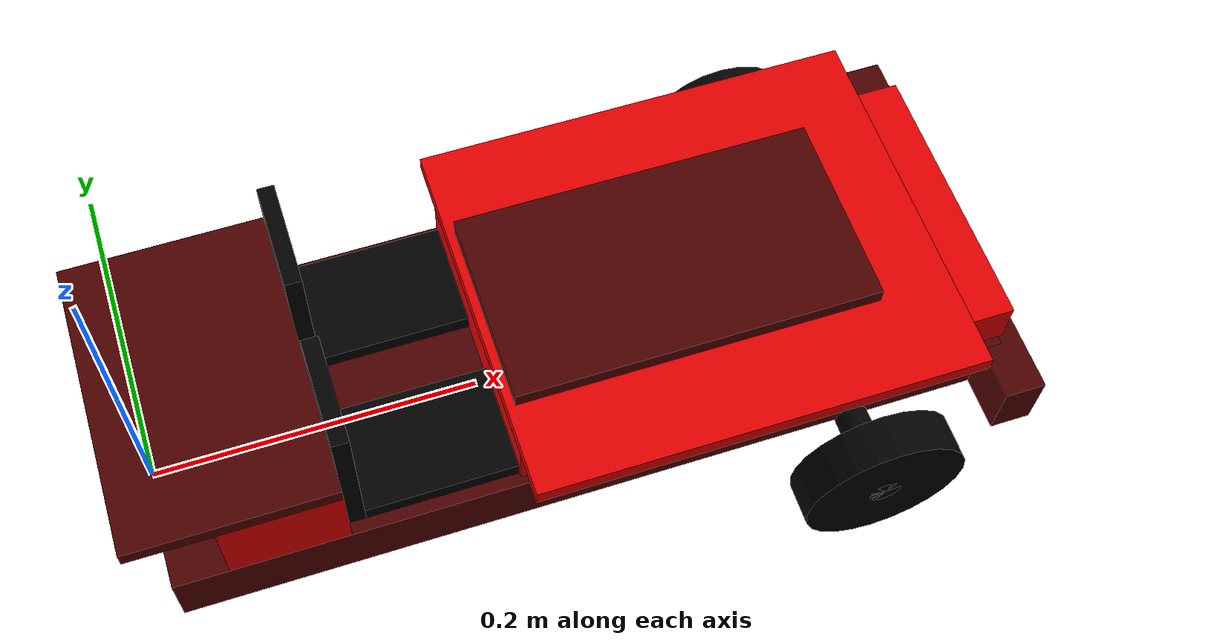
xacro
<?xml version="1.0" ?>
<robot name='robot' xmlns:xacro="http://ros.org/wiki/xacro">

    <xacro:include filename="$(find robot_description)/urdf/gazebo.urdf.xacro" />

    <xacro:property name="base_link_length" value="0.5"/>
    <xacro:property name="base_link_width" value="0.18"/>
    <xacro:property name="base_link_height" value="0.04"/>

    <xacro:property name="wheel_radius" value="0.05"/>
    <xacro:property name="wheel_thickness" value="0.026"/>
    <xacro:property name="wheel_mass" value="0.05"/>
    <xacro:property name="wheel_offset_x" value="0.226"/>
    <xacro:property name="wheel_offset_y" value="0.13"/>
    <xacro:property name="wheel_offset_z" value="0.01"/>

    <xacro:property name="chassis_length" value="0.286"/>
    <xacro:property name="chassis_radius" value="0.01"/>
    <xacro:property name="chassis_mass" value="0.01"/>

    <xacro:property name="bumper_length" value="0.025"/>
    <xacro:property name="bumper_width" value="0.246"/>
    <xacro:property name="bumper_height" value="0.04"/>
    <xacro:property name="bumper_mass" value="0.001"/>

    <xacro:property name="motor_length" value="0.3"/>
    <xacro:property name="motor_width" value="0.17"/>
    <xacro:property name="motor_height" value="0.03"/>
    <xacro:property name="motor_mass" value="0.01"/>

    <xacro:property name="bonnet_length" value="0.27"/>
    <xacro:property name="bonnet_width" value="0.23"/>
    <xacro:property name="bonnet_height" value="0.01"/>
    <xacro:property name="bonnet_mass" value="0.001"/>

    <xacro:property name="aerodynamic_length" value="0.22"/>
    <xacro:property name="aerodynamic_width" value="0.12"/>
    <xacro:property name="aerodynamic_height" value="0.01"/>
    <xacro:property name="aerodynamic_mass" value="0.0001"/>

    <xacro:property name="seat_length" value="0.1"/>
    <xacro:property name="seat_width" value="0.065"/>
    <xacro:property name="seat_mass" value="0.001"/>
    <xacro:property name="seat_height" value="0.01"/>
    <xacro:property name="seat_offset_y" value="0.05"/>
    <xacro:property name="seat_down_position_x" value="${base_link_length-motor_length + bumper_length/2 -seat_length/2}"/>
    <xacro:property name="seat_down_position_z" value="${base_link_height + seat_height/2}"/>
    <xacro:property name="seat_up_position_x" value="${base_link_length-motor_length + bumper_length/2 -seat_length - seat_height/2}"/>
    <xacro:property name="seat_up_position_z" value="${base_link_height + seat_length/2}"/>

    <xacro:property name="wall_length" value="0.07"/>
    <xacro:property name="wall_width" value="0.18"/>
    <xacro:property name="wall_height" value="0.05"/>
    <xacro:property name="wall_mass" value="0.01"/>
    <xacro:property name="wall_position_x" value="${seat_up_position_x - seat_height/2 - wall_length/2}"/>
    <xacro:property name="wall_position_z" value="${base_link_height + wall_height/2}"/>

    <xacro:property name="trunk_length" value="0.12"/>
    <xacro:property name="trunk_width" value="0.18"/>
    <xacro:property name="trunk_height" value="0.01"/>
    <xacro:property name="trunk_mass" value="0.001"/>
    <xacro:property name="trunk_position_x" value="${seat_up_position_x - seat_height/2 - trunk_length/2}"/>
    <xacro:property name="trunk_position_z" value="${base_link_height + wall_height + trunk_height/2}"/>

    <xacro:property name="caster_wheel_radius" value="0.05"/>
    <xacro:property name="caster_wheel_thickness" value="0.026"/>
    <xacro:property name="caster_wheel_mass" value="0.01"/>
    <xacro:property name="caster_wheel_offset_x" value="0.02"/>
    <xacro:property name="caster_wheel_offset_z" value="${wheel_offset_z - wheel_radius + caster_wheel_radius}"/>
    <xacro:property name="mass" value="0.01"/>

    <!-- Inertias -->

    <xacro:macro name="box_inertia" params="mass l w h">
        <inertia ixx="${(1/12) * mass * (w*w+h*h)}" ixy="0.0" ixz="0.0"
                 iyy="${(1/12) * mass * (l*l+h*h)}" iyz="0.0"
                 izz="${(1/12) * mass * (l*l+w*w)}" />
    </xacro:macro>

    <xacro:macro name="cylinder_inertia" params="mass r l">
        <inertia ixx="${(1/12) * mass * (3*r*r + l*l)}" ixy="0.0" ixz="0.0"
                 iyy="${(1/12) * mass * (3*r*r + l*l)}" iyz="0.0"
                 izz="${(1/2) * mass * (r*r)}" />
    </xacro:macro>

    <xacro:macro name="sphere_inertia" params="mass r">
        <inertia ixx="${(2/5)*mass*r*r}" ixy="0.0" ixz="0.0"
                 iyy="${(2/5)*mass*r*r}" iyz="0.0"
                 izz="${(2/5)*mass*r*r}" />
    </xacro:macro>

    <!-- Materials -->

    <material name="white">
        <color rgba="1 1 1 1" />
    </material>

     <material name="orange">
        <color rgba="1 0.3 0.1 1"/>
    </material>

    <material name="blue">
        <color rgba="0.2 0.2 1 1"/>
    </material>

    <material name="red">
        <color rgba="0.9 0 0 1"/>
    </material>

    <material name="dark_red">
        <color rgba="0.3 0 0 1"/>
    </material>

    <material name="black">
        <color rgba="0 0 0 1"/>
    </material>

    <!-- Robot Base -->

    <link name='base_link'>
    <inertial>
        <origin xyz="${base_link_length/2} 0 ${base_link_height/2}" rpy="0 0 0"/>
        <mass value="${mass}"/>
        <xacro:box_inertia mass="${mass}" l="${base_link_length}" w="${base_link_width}" h="${base_link_height}"/>
    </inertial>
    <visual>
        <origin xyz="${base_link_length/2} 0 ${base_link_height/2}"/>
        <geometry>
            <box size="${base_link_length} ${base_link_width} ${base_link_height}"/>
        </geometry>
        <material name="dark_red"/>
    </visual>
    <collision>
        <origin xyz="${base_link_length/2} 0 ${base_link_height/2}"/>
        <geometry>
            <box size="${base_link_length} ${base_link_width} ${base_link_height}"/>
        </geometry>
    </collision>
    </link>

    <gazebo reference="base_link">
        <material>Gazebo/Black</material>
    </gazebo>

    <!-- Robot Wheels -->

    <xacro:macro name="wheel" params="prefix reflect">
        <joint name="${prefix}_wheel_joint" type="continuous">
            <parent link="base_link"/>
            <child link="${prefix}_wheel"/>
            <origin xyz="${base_link_length*0.82} ${reflect*wheel_offset_y} 0" rpy="${-1*reflect*pi/2} 0 0" />
            <axis xyz="0 0 ${reflect}"/>
        </joint>

        <link name="${prefix}_wheel">
            <visual>
                <geometry>
                    <cylinder radius="${wheel_radius}" length="${wheel_thickness}"/>
                </geometry>
                <material name="black"/>
            </visual>
            <collision>
                <geometry>
                    <sphere radius="${wheel_radius}"/>
                </geometry>
            </collision>
            <inertial>
                <origin xyz="0 0 0" rpy="0 0 0"/>
                <mass value="${wheel_mass}" />
                <xacro:cylinder_inertia mass="${wheel_mass}" r="${wheel_radius}" l="${wheel_thickness}"/>
            </inertial>
        </link>

        <gazebo reference="${prefix}_wheel">
            <material>Gazebo/Purple</material>
        </gazebo>
    </xacro:macro>

    <xacro:wheel prefix="left" reflect="1" />
    <xacro:wheel prefix="right" reflect="-1" />

    <!-- Caster Wheel-->

     <joint name="caster_wheel_joint" type="fixed">
        <parent link="base_link"/>
        <child link="caster_wheel"/>
        <origin xyz="${caster_wheel_offset_x} 0 0" rpy="0 0 0"/>
    </joint>

    <link name="caster_wheel">
        <visual>
            <geometry>
                <sphere radius="${caster_wheel_radius}"/>
            </geometry>
            <material name="black"/>
        </visual>
        <collision>
            <geometry>
                <sphere radius="${caster_wheel_radius}"/>
            </geometry>
        </collision>
        <inertial>
            <origin xyz="0 0 0" rpy="0 0 0"/>
            <mass value="${caster_wheel_mass}" />
            <xacro:sphere_inertia mass="${caster_wheel_mass}" r="${caster_wheel_radius}"/>
        </inertial>
    </link>

    <gazebo reference="caster_wheel">
        <material>Gazebo/Black</material>
        <mu1 value="0.0001"/>
        <mu2 value="0.0001"/>
    </gazebo>

    <!-- Chassis -->

    <link name="chassis">
        <visual>
            <origin xyz="${base_link_length*0.82} 0 0 " rpy="${pi/2} 0 0"/>
            <geometry>
                <cylinder radius="${chassis_radius}" length="${chassis_length}"/>
            </geometry>
            <material name="black"/>
        </visual>
        <collision>
            <origin xyz="${base_link_length*0.82} 0 0 " rpy="${pi/2} 0 0"/>
            <geometry>
                <cylinder radius="${chassis_radius}" length="${chassis_length}"/>
            </geometry>
        </collision>
        <inertial>
            <mass value="${chassis_mass}"/>
            <xacro:cylinder_inertia mass="${chassis_mass}" r="${chassis_radius}" l="${chassis_length}"/>
        </inertial>
    </link>

    <joint name="chassis_joint" type="fixed">
            <parent link="base_link"/>
            <child link="chassis"/>
            <origin xyz="0 0 0" rpy="0 0 0"/>
    </joint>

    <gazebo reference="chassis">
            <material>Gazebo/Black</material>
    </gazebo>

    <!-- Bumper -->

    <link name="bumper">
        <visual>
            <origin xyz="${base_link_length} 0 ${bumper_height/2}" rpy="0 0 0"/>
            <geometry>
                <box size="${bumper_length} ${bumper_width} ${bumper_height}"/>
            </geometry>
            <material name="dark_red"/>
        </visual>
        <collision>
            <origin xyz="${base_link_length} 0 ${bumper_height/2}" rpy="0 0 0"/>
            <geometry>
                <box size="${bumper_length} ${bumper_width} ${bumper_height}"/>
            </geometry>
        </collision>
        <inertial>
            <mass value="${bumper_mass}"/>
            <xacro:box_inertia mass="${bumper_mass}" l="${bumper_length}" w="${bumper_width}" h="${bumper_height}"/>
        </inertial>
    </link>

    <joint name="bumper_joint" type="fixed">
            <parent link="base_link"/>
            <child link="bumper"/>
            <origin xyz="0 0 0" rpy="0 0 0"/>
    </joint>

    <gazebo reference="bumper">
            <material>Gazebo/Red</material>
    </gazebo>

    <!-- motor -->

    <link name="motor">
        <visual>
            <origin xyz="${base_link_length + bumper_length/2 - motor_length/2 - 0.01} 0 ${bumper_height + motor_height/2}" rpy="0 0 0"/>
            <geometry>
                <box size="${motor_length} ${motor_width} ${motor_height}"/>
            </geometry>
            <material name="red"/>
        </visual>
        <collision>
            <origin xyz="${base_link_length + bumper_length/2 - motor_length/2 - 0.01} 0 ${bumper_height + motor_height/2}" rpy="0 0 0"/>
            <geometry>
                <box size="${motor_length} ${motor_width} ${motor_height}"/>
            </geometry>
        </collision>
        <inertial>
            <mass value="${motor_mass}"/>
            <xacro:box_inertia mass="${motor_mass}" l="${motor_length}" w="${motor_width}" h="${motor_height}"/>
        </inertial>
    </link>

    <joint name="motor_joint" type="fixed">
            <parent link="base_link"/>
            <child link="motor"/>
            <origin xyz="0 0 0" rpy="0 0 0"/>
    </joint>

    <gazebo reference="motor">
            <material>Gazebo/Red</material>
    </gazebo>

    <!-- Bonnet -->

    <link name="bonnet">
        <visual>
            <origin xyz="${base_link_length + bumper_length/2 - bonnet_length/2 - 0.04} 0 ${bumper_height + bonnet_height/2 + motor_height}" rpy="0 0 0"/>
            <geometry>
                <box size="${bonnet_length} ${bonnet_width} ${bonnet_height}"/>
            </geometry>
            <material name="red"/>
        </visual>
        <collision>
            <origin xyz="${base_link_length + bumper_length/2 - bonnet_length/2 - 0.04} 0 ${bumper_height + bonnet_height/2 + motor_height}" rpy="0 0 0"/>
            <geometry>
                <box size="${bonnet_length} ${bonnet_width} ${bonnet_height}"/>
            </geometry>
        </collision>
        <inertial>
            <mass value="${bonnet_mass}"/>
            <xacro:box_inertia mass="${bonnet_mass}" l="${bonnet_length}" w="${bonnet_width}" h="${bonnet_height}"/>
        </inertial>
    </link>

    <joint name="bonnet_joint" type="fixed">
            <parent link="base_link"/>
            <child link="bonnet"/>
            <origin xyz="0 0 0" rpy="0 0 0"/>
    </joint>

    <gazebo reference="bonnet">
            <material>Gazebo/Red</material>
    </gazebo>

    <!-- Aerodynamic -->

    <link name="aerodynamic">
        <visual>
            <origin xyz="${base_link_length + bumper_length/2 - bonnet_length/2 - 0.06} 0 ${bumper_height + bonnet_height + motor_height + aerodynamic_height/2}" rpy="0 0 0"/>
            <geometry>
                <box size="${aerodynamic_length} ${aerodynamic_width} ${aerodynamic_height}"/>
            </geometry>
            <material name="dark_red"/>
        </visual>
        <collision>
            <origin xyz="${base_link_length + bumper_length/2 - bonnet_length/2 - 0.06} 0 ${bumper_height + bonnet_height + motor_height + aerodynamic_height/2}" rpy="0 0 0"/>
            <geometry>
                <box size="${aerodynamic_length} ${aerodynamic_width} ${aerodynamic_height}"/>
            </geometry>
        </collision>
        <inertial>
            <mass value="${aerodynamic_mass}"/>
            <xacro:box_inertia mass="${aerodynamic_mass}" l="${aerodynamic_length}" w="${aerodynamic_width}" h="${aerodynamic_height}"/>
        </inertial>
    </link>

    <joint name="aerodynamic_joint" type="fixed">
            <parent link="base_link"/>
            <child link="aerodynamic"/>
            <origin xyz="0 0 0" rpy="0 0 0"/>
    </joint>

    <gazebo reference="aerodynamic">
            <material>Gazebo/Red</material>
    </gazebo>

    <!-- Robot seats -->

    <xacro:macro name="seat" params="prefix reflect angle position_x position_z">
        <joint name="${prefix}_seat_joint" type="fixed">
            <parent link="base_link"/>
            <child link="${prefix}_seat"/>
            <origin xyz="${position_x} ${reflect*seat_offset_y} ${position_z}" rpy="0 ${angle} 0"/>
        </joint>

        <link name="${prefix}_seat">
            <visual>
                <geometry>
                    <box size="${seat_length} ${seat_width} ${seat_height}"/>
                </geometry>
                <material name="black"/>
            </visual>
            <collision>
                <geometry>
                    <box size="${seat_length} ${seat_width} ${seat_height}"/>
                </geometry>
            </collision>
            <inertial>
                <origin xyz="0 0 0" rpy="0 0 0"/>
                <mass value="${seat_mass}" />
                <xacro:box_inertia mass="${seat_mass}" l="${seat_length}" w="${seat_width}" h="${seat_height}"/>
            </inertial>
        </link>

        <gazebo reference="${prefix}_seat">
            <material>Gazebo/Black</material>
        </gazebo>
    </xacro:macro>

    <xacro:seat prefix="left_down" reflect="1" angle="0" position_x="${seat_down_position_x}" position_z="${seat_down_position_z}"/>
    <xacro:seat prefix="right_down" reflect="-1" angle="0" position_x="${seat_down_position_x}" position_z="${seat_down_position_z}"/>
    <xacro:seat prefix="left_up" reflect="1" angle="${pi/2}" position_x="${seat_up_position_x}" position_z="${seat_up_position_z}"/>
    <xacro:seat prefix="right_up" reflect="-1" angle="${pi/2}" position_x="${seat_up_position_x}" position_z="${seat_up_position_z}"/>

    <!-- Wall -->

    <link name="wall">
        <visual>
            <origin xyz="${wall_position_x} 0 ${wall_position_z}" rpy="0 0 0"/>
            <geometry>
                <box size="${wall_length} ${wall_width} ${wall_height}"/>
            </geometry>
            <material name="red"/>
        </visual>
        <collision>
            <origin xyz="${wall_position_x} 0 ${wall_position_z}" rpy="0 0 0"/>
            <geometry>
                <box size="${wall_length} ${wall_width} ${wall_height}"/>
            </geometry>
        </collision>
        <inertial>
            <mass value="${wall_mass}"/>
            <xacro:box_inertia mass="${wall_mass}" l="${wall_length}" w="${wall_width}" h="${wall_height}"/>
        </inertial>
    </link>

    <joint name="wall_joint" type="fixed">
            <parent link="base_link"/>
            <child link="wall"/>
            <origin xyz="0 0 0" rpy="0 0 0"/>
    </joint>

    <gazebo reference="wall">
            <material>Gazebo/Red</material>
    </gazebo>

    <!-- Trunk -->

    <link name="trunk">
        <visual>
            <origin xyz="${trunk_position_x} 0 ${trunk_position_z}" rpy="0 0 0"/>
            <geometry>
                <box size="${trunk_length} ${trunk_width} ${trunk_height}"/>d3
            </geometry>
            <material name="dark_red"/>
        </visual>
        <collision>
            <origin xyz="${trunk_position_x} 0 ${trunk_position_z}" rpy="0 0 0"/>
            <geometry>
                <box size="${trunk_length} ${trunk_width} ${trunk_height}"/>
            </geometry>
        </collision>
        <inertial>
            <mass value="${trunk_mass}"/>
            <xacro:box_inertia mass="${trunk_mass}" l="${trunk_length}" w="${trunk_width}" h="${trunk_height}"/>
        </inertial>
    </link>

    <joint name="trunk_joint" type="fixed">
            <parent link="base_link"/>
            <child link="trunk"/>
            <origin xyz="0 0 0" rpy="0 0 0"/>
    </joint>

    <gazebo reference="trunk">
            <material>Gazebo/Red</material>
    </gazebo>

</robot>
